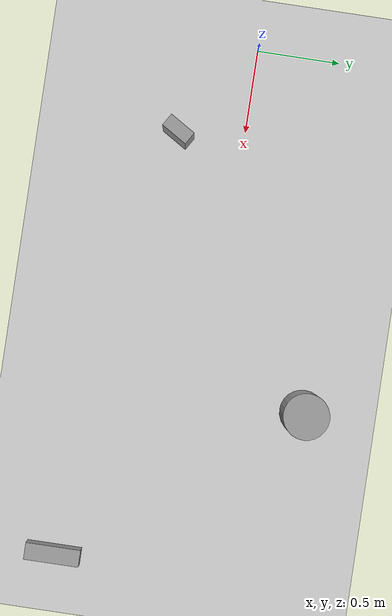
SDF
<sdf version="1.7">
 <world name="default">
  <light name="sun" type="directional">
   <pose>0 0 10 0 -0 0</pose>
   <diffuse>0.8 0.8 0.8 1</diffuse>
   <specular>0.2 0.2 0.2 1</specular>
   <attenuation>
    <range>1000</range>
    <constant>0.9</constant>
    <linear>0.01</linear>
    <quadratic>0.001</quadratic>
   </attenuation>
   <direction>-0.5 0.1 -0.9</direction>
   <spot><inner_angle>0</inner_angle><outer_angle>0</outer_angle><falloff>0</falloff></spot>
  </light>
  <model name="ground_plane">
   <static>1</static>
   <link name="link">
    <collision name="collision">
     <geometry><plane><normal>0 0 1</normal><size>100 100</size></plane></geometry>
     <surface>
      <contact><collide_bitmask>65535</collide_bitmask></contact>
      <friction><ode><mu>100</mu><mu2>50</mu2></ode></friction>
     </surface>
    </collision>
    <visual name="visual">
     <cast_shadows>0</cast_shadows>
     <geometry><plane><normal>0 0 1</normal><size>100 100</size></plane></geometry>
     <material>
      <script><uri>file://media/materials/scripts/gazebo.material</uri><name>Gazebo/Grey</name></script>
     </material>
    </visual>
   </link>
  </model>
  <gravity>0 0 -9.8</gravity>
  <magnetic_field>6e-06 2.3e-05 -4.2e-05</magnetic_field>
  <atmosphere type="adiabatic"/>
  <physics type="ode">
   <max_step_size>0.001</max_step_size>
   <real_time_factor>1</real_time_factor>
   <real_time_update_rate>1000</real_time_update_rate>
  </physics>
  <scene><ambient>0.4 0.4 0.4 1</ambient><background>0.7 0.7 0.7 1</background><shadows>1</shadows></scene>
  <spherical_coordinates>
   <surface_model>EARTH_WGS84</surface_model>
   <latitude_deg>0</latitude_deg>
   <longitude_deg>0</longitude_deg>
   <elevation>0</elevation>
   <heading_deg>0</heading_deg>
  </spherical_coordinates>
  <model name="unit_cylinder">
   <pose>2.12401 0.586205 0.367013 -0 -0 -0</pose>
   <link name="link">
    <inertial>
     <mass>1</mass>
     <inertia><ixx>0.145833</ixx><ixy>0</ixy><ixz>0</ixz><iyy>0.145833</iyy><iyz>0</iyz><izz>0.125</izz></inertia>
    </inertial>
    <collision name="collision">
     <geometry><cylinder><radius>0.136808</radius><length>0.681175</length></cylinder></geometry>
    </collision>
    <visual name="visual">
     <geometry><cylinder><radius>0.136808</radius><length>0.681175</length></cylinder></geometry>
     <material>
      <script><name>Gazebo/Grey</name><uri>file://media/materials/scripts/gazebo.material</uri></script>
     </material>
    </visual>
   </link>
  </model>
  <model name="unit_box">
   <pose>0.58087 -0.396532 0.427854 0 0 -0.547962</pose>
   <link name="link">
    <inertial>
     <mass>1</mass>
     <inertia>
      <ixx>0.166667</ixx>
      <ixy>0</ixy>
      <ixz>0</ixz>
      <iyy>0.166667</iyy>
      <iyz>0</iyz>
      <izz>0.166667</izz>
     </inertia>
    </inertial>
    <collision name="collision">
     <geometry><box><size>0.0823833 0.172597 0.598996</size></box></geometry>
    </collision>
    <visual name="visual">
     <geometry><box><size>0.0823833 0.172597 0.598996</size></box></geometry>
     <material>
      <script><name>Gazebo/Grey</name><uri>file://media/materials/scripts/gazebo.material</uri></script>
     </material>
    </visual>
   </link>
  </model>
  <model name="unit_box_0">
   <pose>3.17831 -0.774587 0.135436 0 -0 0</pose>
   <link name="link">
    <inertial>
     <mass>1</mass>
     <inertia>
      <ixx>0.166667</ixx>
      <ixy>0</ixy>
      <ixz>0</ixz>
      <iyy>0.166667</iyy>
      <iyz>0</iyz>
      <izz>0.166667</izz>
     </inertia>
    </inertial>
    <collision name="collision">
     <geometry><box><size>0.101595 0.331358 0.216698</size></box></geometry>
    </collision>
    <visual name="visual">
     <geometry><box><size>0.101595 0.331358 0.216698</size></box></geometry>
     <material>
      <script><name>Gazebo/Grey</name><uri>file://media/materials/scripts/gazebo.material</uri></script>
     </material>
    </visual>
   </link>
  </model>
 </world>
</sdf>
